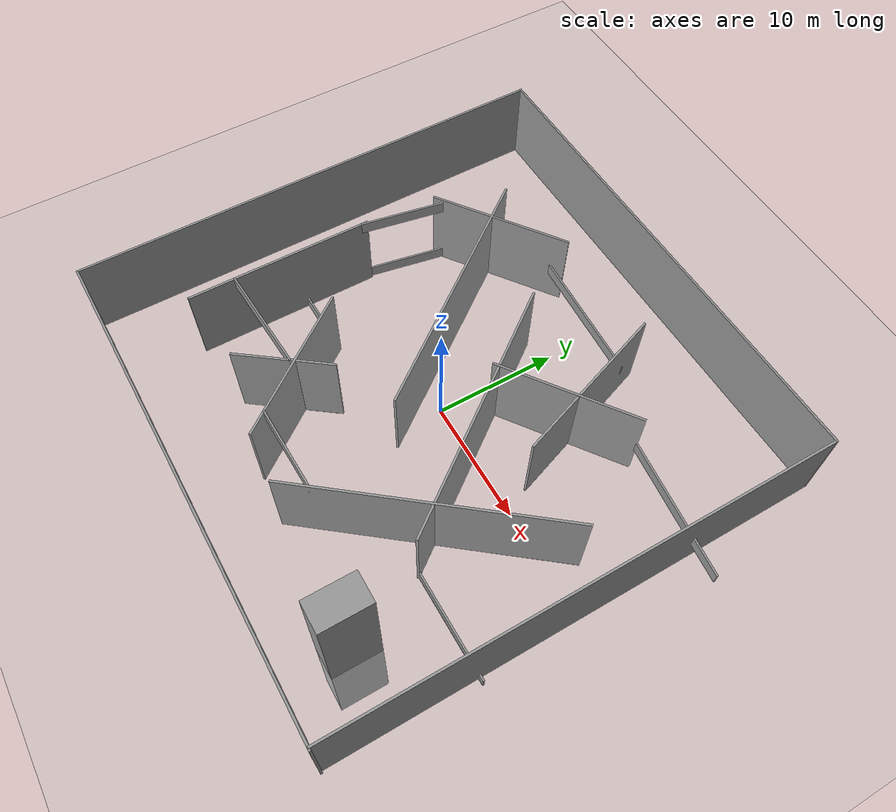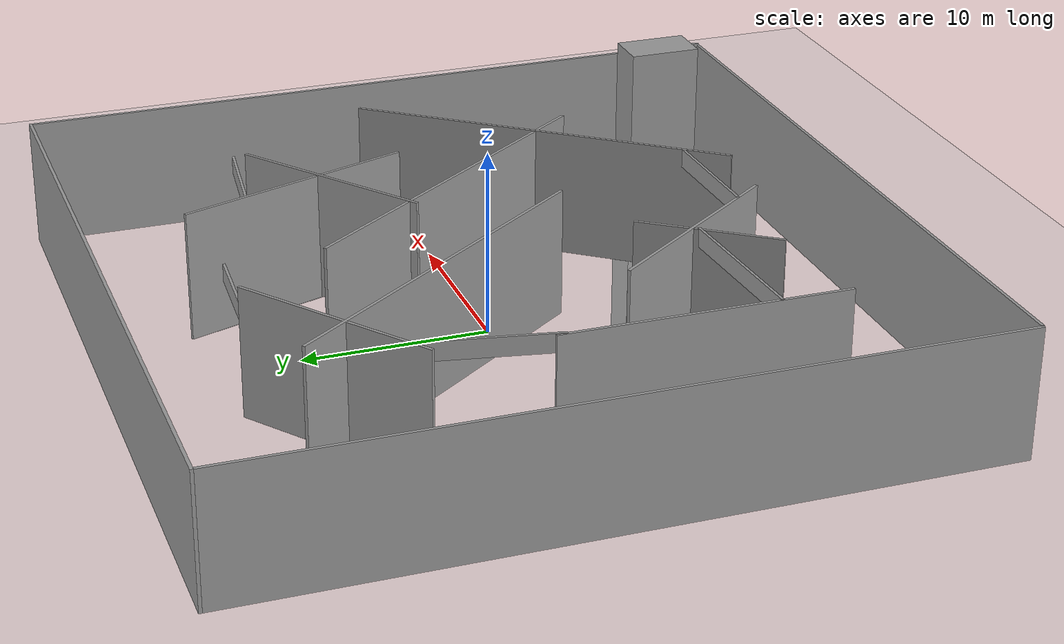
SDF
<sdf version="1.6">
 <world name="default">
  <light name="sun" type="directional">
   <pose>0 0 10 0 -0 0</pose>
   <diffuse>0.8 0.8 0.8 1</diffuse>
   <specular>0.1 0.1 0.1 1</specular>
   <attenuation>
    <range>1000</range>
    <constant>0.9</constant>
    <linear>0.01</linear>
    <quadratic>0.001</quadratic>
   </attenuation>
   <direction>-0.5 0.5 -1</direction>
  </light>
  <plugin name="gazebo_occupancy_map" filename="libgazebo_2Dmap_plugin.so">
   <map_resolution>0.5</map_resolution>
   <map_z>0.5</map_z>
   <map_size_x>50</map_size_x>
   <map_size_y>50</map_size_y>
   <init_robot_x>0</init_robot_x>
   <init_robot_y>0</init_robot_y>
  </plugin>
  <model name="ground_plane">
   <static>1</static>
   <link name="link">
    <collision name="collision">
     <geometry><plane><normal>0 0 1</normal><size>100 100</size></plane></geometry>
     <surface><friction><ode><mu>100</mu><mu2>50</mu2></ode></friction></surface>
    </collision>
    <visual name="visual">
     <cast_shadows>0</cast_shadows>
     <geometry><plane><normal>0 0 1</normal><size>100 100</size></plane></geometry>
     <material>
      <script><uri>file://media/materials/scripts/gazebo.material</uri><name>Gazebo/Grey</name></script>
     </material>
    </visual>
   </link>
  </model>
  <gravity>0 0 -9.8</gravity>
  <magnetic_field>6e-06 2.3e-05 -4.2e-05</magnetic_field>
  <atmosphere type="adiabatic"/>
  <physics name="default_physics" default="0" type="ode">
   <max_step_size>0.001</max_step_size>
   <real_time_factor>1</real_time_factor>
   <real_time_update_rate>1000</real_time_update_rate>
  </physics>
  <scene><ambient>0.4 0.4 0.4 1</ambient><background>0.7 0.7 0.7 1</background><shadows>1</shadows></scene>
  <spherical_coordinates>
   <surface_model>EARTH_WGS84</surface_model>
   <latitude_deg>0</latitude_deg>
   <longitude_deg>0</longitude_deg>
   <elevation>0</elevation>
   <heading_deg>0</heading_deg>
  </spherical_coordinates>
  <model name="lab">
   <link name="link">
    <pose>-7.10367 -10.0107 0.018867 0 -0 0</pose>
    <inertial>
     <mass>39.716</mass>
     <inertia><ixx>5223.85</ixx><ixy>0</ixy><ixz>0</ixz><iyy>6.61934</iyy><iyz>0</iyz><izz>5223.85</izz></inertia>
    </inertial>
    <visual name="visual">
     <geometry><box><size>0.170027 39.716 6.99793</size></box></geometry>
     <material>
      <script><name>Gazebo/Grey</name><uri>file://media/materials/scripts/gazebo.material</uri></script>
      <ambient>0.3 0.3 0.3 1</ambient>
      <diffuse>0.7 0.7 0.7 1</diffuse>
      <specular>0.01 0.01 0.01 1</specular>
      <emissive>0 0 0 1</emissive>
     </material>
    </visual>
    <collision name="collision">
     <geometry><box><size>0.170027 39.716 6.99793</size></box></geometry>
     <surface>
      <friction>
       <ode><mu>1</mu><mu2>1</mu2><fdir1>0 0 0</fdir1><slip1>0</slip1><slip2>0</slip2></ode>
       <torsional>
        <coefficient>1</coefficient>
        <patch_radius>0</patch_radius>
        <surface_radius>0</surface_radius>
        <use_patch_radius>1</use_patch_radius>
        <ode><slip>0</slip></ode>
       </torsional>
      </friction>
      <bounce><restitution_coefficient>0</restitution_coefficient><threshold>1e+06</threshold></bounce>
      <contact>
       <collide_without_contact>0</collide_without_contact>
       <collide_without_contact_bitmask>1</collide_without_contact_bitmask>
       <collide_bitmask>1</collide_bitmask>
       <ode>
        <soft_cfm>0</soft_cfm>
        <soft_erp>0.2</soft_erp>
        <kp>1e+13</kp>
        <kd>1</kd>
        <max_vel>0.01</max_vel>
        <min_depth>0</min_depth>
       </ode>
       <bullet>
        <split_impulse>1</split_impulse>
        <split_impulse_penetration_threshold>-0.01</split_impulse_penetration_threshold>
        <soft_cfm>0</soft_cfm>
        <soft_erp>0.2</soft_erp>
        <kp>1e+13</kp>
        <kd>1</kd>
       </bullet>
      </contact>
     </surface>
    </collision>
   </link>
   <link name="link_1">
    <pose>26.466 -24.6117 -3.06946 -2e-06 0.002655 -0.000605</pose>
    <inertial>
     <mass>166.387</mass>
     <inertia><ixx>4712.69</ixx><ixy>0</ixy><ixz>0</ixz><iyy>4580.01</iyy><iyz>0</iyz><izz>288.398</izz></inertia>
    </inertial>
    <visual name="visual">
     <geometry><box><size>2.36963 3.8967 18.0194</size></box></geometry>
     <material>
      <lighting>1</lighting>
      <script><uri>file://media/materials/scripts/gazebo.material</uri><name>Gazebo/Grey</name></script>
      <ambient>0.3 0.3 0.3 1</ambient>
      <diffuse>0.7 0.7 0.7 1</diffuse>
      <specular>0.01 0.01 0.01 1</specular>
      <emissive>0 0 0 1</emissive>
     </material>
    </visual>
    <collision name="collision">
     <geometry><box><size>2.36963 3.8967 18.0194</size></box></geometry>
     <surface>
      <friction>
       <ode><mu>1</mu><mu2>1</mu2><fdir1>0 0 0</fdir1><slip1>0</slip1><slip2>0</slip2></ode>
       <torsional>
        <coefficient>1</coefficient>
        <patch_radius>0</patch_radius>
        <surface_radius>0</surface_radius>
        <use_patch_radius>1</use_patch_radius>
        <ode><slip>0</slip></ode>
       </torsional>
      </friction>
      <bounce><restitution_coefficient>0</restitution_coefficient><threshold>1e+06</threshold></bounce>
      <contact>
       <collide_without_contact>0</collide_without_contact>
       <collide_without_contact_bitmask>1</collide_without_contact_bitmask>
       <collide_bitmask>1</collide_bitmask>
       <ode>
        <soft_cfm>0</soft_cfm>
        <soft_erp>0.2</soft_erp>
        <kp>1e+13</kp>
        <kd>1</kd>
        <max_vel>0.01</max_vel>
        <min_depth>0</min_depth>
       </ode>
       <bullet>
        <split_impulse>1</split_impulse>
        <split_impulse_penetration_threshold>-0.01</split_impulse_penetration_threshold>
        <soft_cfm>0</soft_cfm>
        <soft_erp>0.2</soft_erp>
        <kp>1e+13</kp>
        <kd>1</kd>
       </bullet>
      </contact>
     </surface>
    </collision>
   </link>
   <link name="link_clone">
    <pose>12.6468 9.86375 -0.014719 -0.002655 6e-06 -1.56835</pose>
    <inertial>
     <mass>39.716</mass>
     <inertia><ixx>5223.85</ixx><ixy>0</ixy><ixz>0</ixz><iyy>6.61934</iyy><iyz>0</iyz><izz>5223.85</izz></inertia>
    </inertial>
    <visual name="visual">
     <geometry><box><size>0.170027 39.716 6.99793</size></box></geometry>
     <material>
      <script><name>Gazebo/Grey</name><uri>file://media/materials/scripts/gazebo.material</uri></script>
      <ambient>0.3 0.3 0.3 1</ambient>
      <diffuse>0.7 0.7 0.7 1</diffuse>
      <specular>0.01 0.01 0.01 1</specular>
      <emissive>0 0 0 1</emissive>
      <shader type="pixel"/>
     </material>
    </visual>
    <collision name="collision">
     <geometry><box><size>0.170027 39.716 6.99793</size></box></geometry>
     <surface>
      <friction>
       <ode><mu>1</mu><mu2>1</mu2><fdir1>0 0 0</fdir1><slip1>0</slip1><slip2>0</slip2></ode>
       <torsional>
        <coefficient>1</coefficient>
        <patch_radius>0</patch_radius>
        <surface_radius>0</surface_radius>
        <use_patch_radius>1</use_patch_radius>
        <ode><slip>0</slip></ode>
       </torsional>
      </friction>
      <bounce><restitution_coefficient>0</restitution_coefficient><threshold>1e+06</threshold></bounce>
      <contact>
       <collide_without_contact>0</collide_without_contact>
       <collide_without_contact_bitmask>1</collide_without_contact_bitmask>
       <collide_bitmask>1</collide_bitmask>
       <ode>
        <soft_cfm>0</soft_cfm>
        <soft_erp>0.2</soft_erp>
        <kp>1e+13</kp>
        <kd>1</kd>
        <max_vel>0.01</max_vel>
        <min_depth>0</min_depth>
       </ode>
       <bullet>
        <split_impulse>1</split_impulse>
        <split_impulse_penetration_threshold>-0.01</split_impulse_penetration_threshold>
        <soft_cfm>0</soft_cfm>
        <soft_erp>0.2</soft_erp>
        <kp>1e+13</kp>
        <kd>1</kd>
       </bullet>
      </contact>
     </surface>
    </collision>
   </link>
   <link name="link_clone_0">
    <pose>32.4054 -9.88106 -0.067179 -2e-06 0.002655 -0.000605</pose>
    <inertial>
     <mass>39.716</mass>
     <inertia><ixx>5223.85</ixx><ixy>0</ixy><ixz>0</ixz><iyy>6.61934</iyy><iyz>0</iyz><izz>5223.85</izz></inertia>
    </inertial>
    <visual name="visual">
     <geometry><box><size>0.170027 39.716 6.99793</size></box></geometry>
     <material>
      <script><name>Gazebo/Grey</name><uri>file://media/materials/scripts/gazebo.material</uri></script>
      <ambient>0.3 0.3 0.3 1</ambient>
      <diffuse>0.7 0.7 0.7 1</diffuse>
      <specular>0.01 0.01 0.01 1</specular>
      <emissive>0 0 0 1</emissive>
      <shader type="pixel"/>
     </material>
    </visual>
    <collision name="collision">
     <geometry><box><size>0.170027 39.716 6.99793</size></box></geometry>
     <surface>
      <friction>
       <ode><mu>1</mu><mu2>1</mu2><fdir1>0 0 0</fdir1><slip1>0</slip1><slip2>0</slip2></ode>
       <torsional>
        <coefficient>1</coefficient>
        <patch_radius>0</patch_radius>
        <surface_radius>0</surface_radius>
        <use_patch_radius>1</use_patch_radius>
        <ode><slip>0</slip></ode>
       </torsional>
      </friction>
      <bounce><restitution_coefficient>0</restitution_coefficient><threshold>1e+06</threshold></bounce>
      <contact>
       <collide_without_contact>0</collide_without_contact>
       <collide_without_contact_bitmask>1</collide_without_contact_bitmask>
       <collide_bitmask>1</collide_bitmask>
       <ode>
        <soft_cfm>0</soft_cfm>
        <soft_erp>0.2</soft_erp>
        <kp>1e+13</kp>
        <kd>1</kd>
        <max_vel>0.01</max_vel>
        <min_depth>0</min_depth>
       </ode>
       <bullet>
        <split_impulse>1</split_impulse>
        <split_impulse_penetration_threshold>-0.01</split_impulse_penetration_threshold>
        <soft_cfm>0</soft_cfm>
        <soft_erp>0.2</soft_erp>
        <kp>1e+13</kp>
        <kd>1</kd>
       </bullet>
      </contact>
     </surface>
    </collision>
   </link>
   <link name="link_clone_clone">
    <pose>12.7693 -29.7513 -0.048615 -0.00531 1e-05 -1.56896</pose>
    <inertial>
     <mass>39.716</mass>
     <inertia><ixx>5223.85</ixx><ixy>0</ixy><ixz>0</ixz><iyy>6.61934</iyy><iyz>0</iyz><izz>5223.85</izz></inertia>
    </inertial>
    <visual name="visual">
     <geometry><box><size>0.170027 39.716 6.99793</size></box></geometry>
     <material>
      <script><name>Gazebo/Grey</name><uri>file://media/materials/scripts/gazebo.material</uri></script>
      <ambient>0.3 0.3 0.3 1</ambient>
      <diffuse>0.7 0.7 0.7 1</diffuse>
      <specular>0.01 0.01 0.01 1</specular>
      <emissive>0 0 0 1</emissive>
      <shader type="pixel"/>
     </material>
    </visual>
    <collision name="collision">
     <geometry><box><size>0.170027 39.716 6.99793</size></box></geometry>
     <surface>
      <friction>
       <ode><mu>1</mu><mu2>1</mu2><fdir1>0 0 0</fdir1><slip1>0</slip1><slip2>0</slip2></ode>
       <torsional>
        <coefficient>1</coefficient>
        <patch_radius>0</patch_radius>
        <surface_radius>0</surface_radius>
        <use_patch_radius>1</use_patch_radius>
        <ode><slip>0</slip></ode>
       </torsional>
      </friction>
      <bounce><restitution_coefficient>0</restitution_coefficient><threshold>1e+06</threshold></bounce>
      <contact>
       <collide_without_contact>0</collide_without_contact>
       <collide_without_contact_bitmask>1</collide_without_contact_bitmask>
       <collide_bitmask>1</collide_bitmask>
       <ode>
        <soft_cfm>0</soft_cfm>
        <soft_erp>0.2</soft_erp>
        <kp>1e+13</kp>
        <kd>1</kd>
        <max_vel>0.01</max_vel>
        <min_depth>0</min_depth>
       </ode>
       <bullet>
        <split_impulse>1</split_impulse>
        <split_impulse_penetration_threshold>-0.01</split_impulse_penetration_threshold>
        <soft_cfm>0</soft_cfm>
        <soft_erp>0.2</soft_erp>
        <kp>1e+13</kp>
        <kd>1</kd>
       </bullet>
      </contact>
     </surface>
    </collision>
   </link>
   <link name="link_clone_clone_0">
    <pose>4.37165 0.589647 -0.026328 -0.004295 0.003123 -0.942256</pose>
    <inertial>
     <mass>11.3941</mass>
     <inertia><ixx>124.221</ixx><ixy>0</ixy><ixz>0</ixz><iyy>1.89902</iyy><iyz>0</iyz><izz>124.221</izz></inertia>
    </inertial>
    <visual name="visual">
     <geometry><box><size>0.170027 11.3941 6.99793</size></box></geometry>
     <material>
      <script><name>Gazebo/Grey</name><uri>file://media/materials/scripts/gazebo.material</uri></script>
      <ambient>0.3 0.3 0.3 1</ambient>
      <diffuse>0.7 0.7 0.7 1</diffuse>
      <specular>0.01 0.01 0.01 1</specular>
      <emissive>0 0 0 1</emissive>
      <shader type="pixel"/>
     </material>
    </visual>
    <collision name="collision">
     <geometry><box><size>0.170027 11.3941 6.99793</size></box></geometry>
     <surface>
      <friction>
       <ode><mu>1</mu><mu2>1</mu2><fdir1>0 0 0</fdir1><slip1>0</slip1><slip2>0</slip2></ode>
       <torsional>
        <coefficient>1</coefficient>
        <patch_radius>0</patch_radius>
        <surface_radius>0</surface_radius>
        <use_patch_radius>1</use_patch_radius>
        <ode><slip>0</slip></ode>
       </torsional>
      </friction>
      <bounce><restitution_coefficient>0</restitution_coefficient><threshold>1e+06</threshold></bounce>
      <contact>
       <collide_without_contact>0</collide_without_contact>
       <collide_without_contact_bitmask>1</collide_without_contact_bitmask>
       <collide_bitmask>1</collide_bitmask>
       <ode>
        <soft_cfm>0</soft_cfm>
        <soft_erp>0.2</soft_erp>
        <kp>1e+13</kp>
        <kd>1</kd>
        <max_vel>0.01</max_vel>
        <min_depth>0</min_depth>
       </ode>
       <bullet>
        <split_impulse>1</split_impulse>
        <split_impulse_penetration_threshold>-0.01</split_impulse_penetration_threshold>
        <soft_cfm>0</soft_cfm>
        <soft_erp>0.2</soft_erp>
        <kp>1e+13</kp>
        <kd>1</kd>
       </bullet>
      </contact>
     </surface>
    </collision>
   </link>
   <link name="link_clone_clone_0_clone">
    <pose>8.31127 -5.90905 -0.049408 -0.004763 -0.006385 -2.50115</pose>
    <inertial>
     <mass>21.3538</mass>
     <inertia><ixx>813.204</ixx><ixy>0</ixy><ixz>0</ixz><iyy>3.55897</iyy><iyz>0</iyz><izz>813.204</izz></inertia>
    </inertial>
    <visual name="visual">
     <geometry><box><size>0.170027 21.3538 6.99793</size></box></geometry>
     <material>
      <script><name>Gazebo/Grey</name><uri>file://media/materials/scripts/gazebo.material</uri></script>
      <ambient>0.3 0.3 0.3 1</ambient>
      <diffuse>0.7 0.7 0.7 1</diffuse>
      <specular>0.01 0.01 0.01 1</specular>
      <emissive>0 0 0 1</emissive>
      <shader type="pixel"/>
     </material>
    </visual>
    <collision name="collision">
     <geometry><box><size>0.170027 21.3538 6.99793</size></box></geometry>
     <surface>
      <friction>
       <ode><mu>1</mu><mu2>1</mu2><fdir1>0 0 0</fdir1><slip1>0</slip1><slip2>0</slip2></ode>
       <torsional>
        <coefficient>1</coefficient>
        <patch_radius>0</patch_radius>
        <surface_radius>0</surface_radius>
        <use_patch_radius>1</use_patch_radius>
        <ode><slip>0</slip></ode>
       </torsional>
      </friction>
      <bounce><restitution_coefficient>0</restitution_coefficient><threshold>1e+06</threshold></bounce>
      <contact>
       <collide_without_contact>0</collide_without_contact>
       <collide_without_contact_bitmask>1</collide_without_contact_bitmask>
       <collide_bitmask>1</collide_bitmask>
       <ode>
        <soft_cfm>0</soft_cfm>
        <soft_erp>0.2</soft_erp>
        <kp>1e+13</kp>
        <kd>1</kd>
        <max_vel>0.01</max_vel>
        <min_depth>0</min_depth>
       </ode>
       <bullet>
        <split_impulse>1</split_impulse>
        <split_impulse_penetration_threshold>-0.01</split_impulse_penetration_threshold>
        <soft_cfm>0</soft_cfm>
        <soft_erp>0.2</soft_erp>
        <kp>1e+13</kp>
        <kd>1</kd>
       </bullet>
      </contact>
     </surface>
    </collision>
   </link>
   <link name="link_clone_clone_0_clone_0">
    <pose>20.0691 -3.60778 -0.079618 -0.006444 0.004683 -0.942869</pose>
    <inertial>
     <mass>11.3941</mass>
     <inertia><ixx>124.221</ixx><ixy>0</ixy><ixz>0</ixz><iyy>1.89902</iyy><iyz>0</iyz><izz>124.221</izz></inertia>
    </inertial>
    <visual name="visual">
     <geometry><box><size>0.170027 11.3941 6.99793</size></box></geometry>
     <material>
      <script><name>Gazebo/Grey</name><uri>file://media/materials/scripts/gazebo.material</uri></script>
      <ambient>0.3 0.3 0.3 1</ambient>
      <diffuse>0.7 0.7 0.7 1</diffuse>
      <specular>0.01 0.01 0.01 1</specular>
      <emissive>0 0 0 1</emissive>
      <shader type="pixel"/>
     </material>
    </visual>
    <collision name="collision">
     <geometry><box><size>0.170027 11.3941 6.99793</size></box></geometry>
     <surface>
      <friction>
       <ode><mu>1</mu><mu2>1</mu2><fdir1>0 0 0</fdir1><slip1>0</slip1><slip2>0</slip2></ode>
       <torsional>
        <coefficient>1</coefficient>
        <patch_radius>0</patch_radius>
        <surface_radius>0</surface_radius>
        <use_patch_radius>1</use_patch_radius>
        <ode><slip>0</slip></ode>
       </torsional>
      </friction>
      <bounce><restitution_coefficient>0</restitution_coefficient><threshold>1e+06</threshold></bounce>
      <contact>
       <collide_without_contact>0</collide_without_contact>
       <collide_without_contact_bitmask>1</collide_without_contact_bitmask>
       <collide_bitmask>1</collide_bitmask>
       <ode>
        <soft_cfm>0</soft_cfm>
        <soft_erp>0.2</soft_erp>
        <kp>1e+13</kp>
        <kd>1</kd>
        <max_vel>0.01</max_vel>
        <min_depth>0</min_depth>
       </ode>
       <bullet>
        <split_impulse>1</split_impulse>
        <split_impulse_penetration_threshold>-0.01</split_impulse_penetration_threshold>
        <soft_cfm>0</soft_cfm>
        <soft_erp>0.2</soft_erp>
        <kp>1e+13</kp>
        <kd>1</kd>
       </bullet>
      </contact>
     </surface>
    </collision>
   </link>
   <link name="link_clone_clone_0_clone_clone">
    <pose>-0.63369 -16.023 -0.047719 1.4e-05 -0.010621 3.1395</pose>
    <inertial>
     <mass>15.0057</mass>
     <inertia><ixx>282.825</ixx><ixy>0</ixy><ixz>0</ixz><iyy>2.50096</iyy><iyz>0</iyz><izz>282.825</izz></inertia>
    </inertial>
    <visual name="visual">
     <geometry><box><size>0.170027 15.0057 6.99793</size></box></geometry>
     <material>
      <script><name>Gazebo/Grey</name><uri>file://media/materials/scripts/gazebo.material</uri></script>
      <ambient>0.3 0.3 0.3 1</ambient>
      <diffuse>0.7 0.7 0.7 1</diffuse>
      <specular>0.01 0.01 0.01 1</specular>
      <emissive>0 0 0 1</emissive>
      <shader type="pixel"/>
     </material>
    </visual>
    <collision name="collision">
     <geometry><box><size>0.170027 15.0057 6.99793</size></box></geometry>
     <surface>
      <friction>
       <ode><mu>1</mu><mu2>1</mu2><fdir1>0 0 0</fdir1><slip1>0</slip1><slip2>0</slip2></ode>
       <torsional>
        <coefficient>1</coefficient>
        <patch_radius>0</patch_radius>
        <surface_radius>0</surface_radius>
        <use_patch_radius>1</use_patch_radius>
        <ode><slip>0</slip></ode>
       </torsional>
      </friction>
      <bounce><restitution_coefficient>0</restitution_coefficient><threshold>1e+06</threshold></bounce>
      <contact>
       <collide_without_contact>0</collide_without_contact>
       <collide_without_contact_bitmask>1</collide_without_contact_bitmask>
       <collide_bitmask>1</collide_bitmask>
       <ode>
        <soft_cfm>0</soft_cfm>
        <soft_erp>0.2</soft_erp>
        <kp>1e+13</kp>
        <kd>1</kd>
        <max_vel>0.01</max_vel>
        <min_depth>0</min_depth>
       </ode>
       <bullet>
        <split_impulse>1</split_impulse>
        <split_impulse_penetration_threshold>-0.01</split_impulse_penetration_threshold>
        <soft_cfm>0</soft_cfm>
        <soft_erp>0.2</soft_erp>
        <kp>1e+13</kp>
        <kd>1</kd>
       </bullet>
      </contact>
     </surface>
    </collision>
   </link>
   <link name="link_clone_clone_0_clone_clone_0">
    <pose>8.33286 -19.2066 -0.071528 -0.006348 -0.008515 -2.50174</pose>
    <inertial>
     <mass>12.5834</mass>
     <inertia><ixx>167.092</ixx><ixy>0</ixy><ixz>0</ixz><iyy>2.09724</iyy><iyz>0</iyz><izz>167.092</izz></inertia>
    </inertial>
    <visual name="visual">
     <geometry><box><size>0.170027 12.5834 6.99793</size></box></geometry>
     <material>
      <script><name>Gazebo/Grey</name><uri>file://media/materials/scripts/gazebo.material</uri></script>
      <ambient>0.3 0.3 0.3 1</ambient>
      <diffuse>0.7 0.7 0.7 1</diffuse>
      <specular>0.01 0.01 0.01 1</specular>
      <emissive>0 0 0 1</emissive>
      <shader type="pixel"/>
     </material>
    </visual>
    <collision name="collision">
     <geometry><box><size>0.170027 12.5834 6.99793</size></box></geometry>
     <surface>
      <friction>
       <ode><mu>1</mu><mu2>1</mu2><fdir1>0 0 0</fdir1><slip1>0</slip1><slip2>0</slip2></ode>
       <torsional>
        <coefficient>1</coefficient>
        <patch_radius>0</patch_radius>
        <surface_radius>0</surface_radius>
        <use_patch_radius>1</use_patch_radius>
        <ode><slip>0</slip></ode>
       </torsional>
      </friction>
      <bounce><restitution_coefficient>0</restitution_coefficient><threshold>1e+06</threshold></bounce>
      <contact>
       <collide_without_contact>0</collide_without_contact>
       <collide_without_contact_bitmask>1</collide_without_contact_bitmask>
       <collide_bitmask>1</collide_bitmask>
       <ode>
        <soft_cfm>0</soft_cfm>
        <soft_erp>0.2</soft_erp>
        <kp>1e+13</kp>
        <kd>1</kd>
        <max_vel>0.01</max_vel>
        <min_depth>0</min_depth>
       </ode>
       <bullet>
        <split_impulse>1</split_impulse>
        <split_impulse_penetration_threshold>-0.01</split_impulse_penetration_threshold>
        <soft_cfm>0</soft_cfm>
        <soft_erp>0.2</soft_erp>
        <kp>1e+13</kp>
        <kd>1</kd>
       </bullet>
      </contact>
     </surface>
    </collision>
   </link>
   <link name="link_clone_clone_0_clone_clone_0_clone">
    <pose>7.67427 -19.6941 -0.091899 0.007911 -0.010662 2.50212</pose>
    <inertial>
     <mass>7.73627</mass>
     <inertia><ixx>39.2301</ixx><ixy>0</ixy><ixz>0</ixz><iyy>1.28938</iyy><iyz>0</iyz><izz>39.2301</izz></inertia>
    </inertial>
    <visual name="visual">
     <geometry><box><size>0.170027 7.73627 6.99793</size></box></geometry>
     <material>
      <script><name>Gazebo/Grey</name><uri>file://media/materials/scripts/gazebo.material</uri></script>
      <ambient>0.3 0.3 0.3 1</ambient>
      <diffuse>0.7 0.7 0.7 1</diffuse>
      <specular>0.01 0.01 0.01 1</specular>
      <emissive>0 0 0 1</emissive>
      <shader type="pixel"/>
     </material>
    </visual>
    <collision name="collision">
     <geometry><box><size>0.170027 7.73627 6.99793</size></box></geometry>
     <surface>
      <friction>
       <ode><mu>1</mu><mu2>1</mu2><fdir1>0 0 0</fdir1><slip1>0</slip1><slip2>0</slip2></ode>
       <torsional>
        <coefficient>1</coefficient>
        <patch_radius>0</patch_radius>
        <surface_radius>0</surface_radius>
        <use_patch_radius>1</use_patch_radius>
        <ode><slip>0</slip></ode>
       </torsional>
      </friction>
      <bounce><restitution_coefficient>0</restitution_coefficient><threshold>1e+06</threshold></bounce>
      <contact>
       <collide_without_contact>0</collide_without_contact>
       <collide_without_contact_bitmask>1</collide_without_contact_bitmask>
       <collide_bitmask>1</collide_bitmask>
       <ode>
        <soft_cfm>0</soft_cfm>
        <soft_erp>0.2</soft_erp>
        <kp>1e+13</kp>
        <kd>1</kd>
        <max_vel>0.01</max_vel>
        <min_depth>0</min_depth>
       </ode>
       <bullet>
        <split_impulse>1</split_impulse>
        <split_impulse_penetration_threshold>-0.01</split_impulse_penetration_threshold>
        <soft_cfm>0</soft_cfm>
        <soft_erp>0.2</soft_erp>
        <kp>1e+13</kp>
        <kd>1</kd>
       </bullet>
      </contact>
     </surface>
    </collision>
   </link>
   <link name="link_clone_clone_0_clone_clone_1">
    <pose>18.0654 -9.60656 -0.097375 -0.006348 -0.008515 -2.50174</pose>
    <inertial>
     <mass>21.3538</mass>
     <inertia><ixx>813.204</ixx><ixy>0</ixy><ixz>0</ixz><iyy>3.55897</iyy><iyz>0</iyz><izz>813.204</izz></inertia>
    </inertial>
    <visual name="visual">
     <geometry><box><size>0.170027 21.3538 6.99793</size></box></geometry>
     <material>
      <script><name>Gazebo/Grey</name><uri>file://media/materials/scripts/gazebo.material</uri></script>
      <ambient>0.3 0.3 0.3 1</ambient>
      <diffuse>0.7 0.7 0.7 1</diffuse>
      <specular>0.01 0.01 0.01 1</specular>
      <emissive>0 0 0 1</emissive>
      <shader type="pixel"/>
     </material>
    </visual>
    <collision name="collision">
     <geometry><box><size>0.170027 21.3538 6.99793</size></box></geometry>
     <surface>
      <friction>
       <ode><mu>1</mu><mu2>1</mu2><fdir1>0 0 0</fdir1><slip1>0</slip1><slip2>0</slip2></ode>
       <torsional>
        <coefficient>1</coefficient>
        <patch_radius>0</patch_radius>
        <surface_radius>0</surface_radius>
        <use_patch_radius>1</use_patch_radius>
        <ode><slip>0</slip></ode>
       </torsional>
      </friction>
      <bounce><restitution_coefficient>0</restitution_coefficient><threshold>1e+06</threshold></bounce>
      <contact>
       <collide_without_contact>0</collide_without_contact>
       <collide_without_contact_bitmask>1</collide_without_contact_bitmask>
       <collide_bitmask>1</collide_bitmask>
       <ode>
        <soft_cfm>0</soft_cfm>
        <soft_erp>0.2</soft_erp>
        <kp>1e+13</kp>
        <kd>1</kd>
        <max_vel>0.01</max_vel>
        <min_depth>0</min_depth>
       </ode>
       <bullet>
        <split_impulse>1</split_impulse>
        <split_impulse_penetration_threshold>-0.01</split_impulse_penetration_threshold>
        <soft_cfm>0</soft_cfm>
        <soft_erp>0.2</soft_erp>
        <kp>1e+13</kp>
        <kd>1</kd>
       </bullet>
      </contact>
     </surface>
    </collision>
   </link>
   <link name="link_clone_clone_0_clone_clone_1_clone">
    <pose>20.2366 -1.78029 -0.151111 -0.004433 -0.012514 -2.8022</pose>
    <inertial>
     <mass>13.3592</mass>
     <inertia><ixx>199.797</ixx><ixy>0</ixy><ixz>0</ixz><iyy>2.22653</iyy><iyz>0</iyz><izz>199.797</izz></inertia>
    </inertial>
    <visual name="visual">
     <geometry><box><size>0.170027 13.3592 6.99793</size></box></geometry>
     <material>
      <script><name>Gazebo/Grey</name><uri>file://media/materials/scripts/gazebo.material</uri></script>
      <ambient>0.3 0.3 0.3 1</ambient>
      <diffuse>0.7 0.7 0.7 1</diffuse>
      <specular>0.01 0.01 0.01 1</specular>
      <emissive>0 0 0 1</emissive>
      <shader type="pixel"/>
     </material>
    </visual>
    <collision name="collision">
     <geometry><box><size>0.170027 13.3592 6.99793</size></box></geometry>
     <surface>
      <friction>
       <ode><mu>1</mu><mu2>1</mu2><fdir1>0 0 0</fdir1><slip1>0</slip1><slip2>0</slip2></ode>
       <torsional>
        <coefficient>1</coefficient>
        <patch_radius>0</patch_radius>
        <surface_radius>0</surface_radius>
        <use_patch_radius>1</use_patch_radius>
        <ode><slip>0</slip></ode>
       </torsional>
      </friction>
      <bounce><restitution_coefficient>0</restitution_coefficient><threshold>1e+06</threshold></bounce>
      <contact>
       <collide_without_contact>0</collide_without_contact>
       <collide_without_contact_bitmask>1</collide_without_contact_bitmask>
       <collide_bitmask>1</collide_bitmask>
       <ode>
        <soft_cfm>0</soft_cfm>
        <soft_erp>0.2</soft_erp>
        <kp>1e+13</kp>
        <kd>1</kd>
        <max_vel>0.01</max_vel>
        <min_depth>0</min_depth>
       </ode>
       <bullet>
        <split_impulse>1</split_impulse>
        <split_impulse_penetration_threshold>-0.01</split_impulse_penetration_threshold>
        <soft_cfm>0</soft_cfm>
        <soft_erp>0.2</soft_erp>
        <kp>1e+13</kp>
        <kd>1</kd>
       </bullet>
      </contact>
     </surface>
    </collision>
   </link>
   <link name="link_clone_clone_0_clone_clone_2">
    <pose>22.5723 -16.2194 -0.10934 -0.006574 0.008342 -0.668218</pose>
    <inertial>
     <mass>21.3538</mass>
     <inertia><ixx>813.204</ixx><ixy>0</ixy><ixz>0</ixz><iyy>3.55897</iyy><iyz>0</iyz><izz>813.204</izz></inertia>
    </inertial>
    <visual name="visual">
     <geometry><box><size>0.170027 21.3538 6.99793</size></box></geometry>
     <material>
      <script><name>Gazebo/Grey</name><uri>file://media/materials/scripts/gazebo.material</uri></script>
      <ambient>0.3 0.3 0.3 1</ambient>
      <diffuse>0.7 0.7 0.7 1</diffuse>
      <specular>0.01 0.01 0.01 1</specular>
      <emissive>0 0 0 1</emissive>
      <shader type="pixel"/>
     </material>
    </visual>
    <collision name="collision">
     <geometry><box><size>0.170027 21.3538 6.99793</size></box></geometry>
     <surface>
      <friction>
       <ode><mu>1</mu><mu2>1</mu2><fdir1>0 0 0</fdir1><slip1>0</slip1><slip2>0</slip2></ode>
       <torsional>
        <coefficient>1</coefficient>
        <patch_radius>0</patch_radius>
        <surface_radius>0</surface_radius>
        <use_patch_radius>1</use_patch_radius>
        <ode><slip>0</slip></ode>
       </torsional>
      </friction>
      <bounce><restitution_coefficient>0</restitution_coefficient><threshold>1e+06</threshold></bounce>
      <contact>
       <collide_without_contact>0</collide_without_contact>
       <collide_without_contact_bitmask>1</collide_without_contact_bitmask>
       <collide_bitmask>1</collide_bitmask>
       <ode>
        <soft_cfm>0</soft_cfm>
        <soft_erp>0.2</soft_erp>
        <kp>1e+13</kp>
        <kd>1</kd>
        <max_vel>0.01</max_vel>
        <min_depth>0</min_depth>
       </ode>
       <bullet>
        <split_impulse>1</split_impulse>
        <split_impulse_penetration_threshold>-0.01</split_impulse_penetration_threshold>
        <soft_cfm>0</soft_cfm>
        <soft_erp>0.2</soft_erp>
        <kp>1e+13</kp>
        <kd>1</kd>
       </bullet>
      </contact>
     </surface>
    </collision>
   </link>
   <static>1</static>
   <pose>-13.6385 10.0871 3.49918 0 -0.002655 0.000605</pose>
  </model>
  <model name="unit_box_0">
   <pose>-11.6173 -4.25608 0.497942 1e-06 0.000828 0.016964</pose>
   <link name="link">
    <inertial>
     <mass>1</mass>
     <inertia>
      <ixx>0.166667</ixx>
      <ixy>0</ixy>
      <ixz>0</ixz>
      <iyy>0.166667</iyy>
      <iyz>0</iyz>
      <izz>0.166667</izz>
     </inertia>
    </inertial>
    <collision name="collision"><geometry><box><size>4.96912 0.147811 1</size></box></geometry></collision>
    <visual name="visual">
     <geometry><box><size>4.96912 0.147811 1</size></box></geometry>
     <material>
      <script><name>Gazebo/Grey</name><uri>file://media/materials/scripts/gazebo.material</uri></script>
     </material>
    </visual>
   </link>
  </model>
  <model name="semimuro_clone">
   <link name="link">
    <pose>0.216555 -0.39907 5.99147 0 -0 0</pose>
    <inertial>
     <mass>1.36462</mass>
     <inertia>
      <ixx>0.227437</ixx>
      <ixy>0</ixy>
      <ixz>0</ixz>
      <iyy>0.325483</iyy>
      <iyz>0</iyz>
      <izz>0.325483</izz>
     </inertia>
    </inertial>
    <visual name="visual">
     <geometry><box><size>6.78097 0.147811 1</size></box></geometry>
     <material>
      <script><name>Gazebo/Grey</name><uri>file://media/materials/scripts/gazebo.material</uri></script>
      <ambient>0.3 0.3 0.3 1</ambient>
      <diffuse>0.7 0.7 0.7 1</diffuse>
      <specular>0.01 0.01 0.01 1</specular>
      <emissive>0 0 0 1</emissive>
     </material>
    </visual>
    <collision name="collision">
     <geometry><box><size>6.78097 0.147811 1</size></box></geometry>
     <surface>
      <friction>
       <ode><mu>1</mu><mu2>1</mu2><fdir1>0 0 0</fdir1><slip1>0</slip1><slip2>0</slip2></ode>
       <torsional>
        <coefficient>1</coefficient>
        <patch_radius>0</patch_radius>
        <surface_radius>0</surface_radius>
        <use_patch_radius>1</use_patch_radius>
        <ode><slip>0</slip></ode>
       </torsional>
      </friction>
      <bounce><restitution_coefficient>0</restitution_coefficient><threshold>1e+06</threshold></bounce>
      <contact>
       <collide_without_contact>0</collide_without_contact>
       <collide_without_contact_bitmask>1</collide_without_contact_bitmask>
       <collide_bitmask>1</collide_bitmask>
       <ode>
        <soft_cfm>0</soft_cfm>
        <soft_erp>0.2</soft_erp>
        <kp>1e+13</kp>
        <kd>1</kd>
        <max_vel>0.01</max_vel>
        <min_depth>0</min_depth>
       </ode>
       <bullet>
        <split_impulse>1</split_impulse>
        <split_impulse_penetration_threshold>-0.01</split_impulse_penetration_threshold>
        <soft_cfm>0</soft_cfm>
        <soft_erp>0.2</soft_erp>
        <kp>1e+13</kp>
        <kd>1</kd>
       </bullet>
      </contact>
     </surface>
    </collision>
   </link>
   <static>1</static>
   <pose>0.450131 -12.0926 0.49794 2.1e-05 0.00083 0.025196</pose>
  </model>
  <model name="semimuro_clone_0">
   <link name="link">
    <pose>0.216555 -0.39907 5.99147 0 -0 0</pose>
    <inertial>
     <mass>1.36462</mass>
     <inertia>
      <ixx>0.227437</ixx>
      <ixy>0</ixy>
      <ixz>0</ixz>
      <iyy>0.325483</iyy>
      <iyz>0</iyz>
      <izz>0.325483</izz>
     </inertia>
    </inertial>
    <visual name="visual">
     <geometry><box><size>6.78097 0.147811 1</size></box></geometry>
     <material>
      <script><name>Gazebo/Grey</name><uri>file://media/materials/scripts/gazebo.material</uri></script>
      <ambient>0.3 0.3 0.3 1</ambient>
      <diffuse>0.7 0.7 0.7 1</diffuse>
      <specular>0.01 0.01 0.01 1</specular>
      <emissive>0 0 0 1</emissive>
     </material>
    </visual>
    <collision name="collision">
     <geometry><box><size>6.78097 0.147811 1</size></box></geometry>
     <surface>
      <friction>
       <ode><mu>1</mu><mu2>1</mu2><fdir1>0 0 0</fdir1><slip1>0</slip1><slip2>0</slip2></ode>
       <torsional>
        <coefficient>1</coefficient>
        <patch_radius>0</patch_radius>
        <surface_radius>0</surface_radius>
        <use_patch_radius>1</use_patch_radius>
        <ode><slip>0</slip></ode>
       </torsional>
      </friction>
      <bounce><restitution_coefficient>0</restitution_coefficient><threshold>1e+06</threshold></bounce>
      <contact>
       <collide_without_contact>0</collide_without_contact>
       <collide_without_contact_bitmask>1</collide_without_contact_bitmask>
       <collide_bitmask>1</collide_bitmask>
       <ode>
        <soft_cfm>0</soft_cfm>
        <soft_erp>0.2</soft_erp>
        <kp>1e+13</kp>
        <kd>1</kd>
        <max_vel>0.01</max_vel>
        <min_depth>0</min_depth>
       </ode>
       <bullet>
        <split_impulse>1</split_impulse>
        <split_impulse_penetration_threshold>-0.01</split_impulse_penetration_threshold>
        <soft_cfm>0</soft_cfm>
        <soft_erp>0.2</soft_erp>
        <kp>1e+13</kp>
        <kd>1</kd>
       </bullet>
      </contact>
     </surface>
    </collision>
   </link>
   <static>1</static>
   <pose>-14.0103 4.19773 0.497941 0.000816 0.000152 1.38611</pose>
  </model>
  <model name="semimuro_clone_0_clone">
   <link name="link">
    <pose>0.216555 -0.39907 5.99147 0 -0 0</pose>
    <inertial>
     <mass>1.36462</mass>
     <inertia>
      <ixx>0.227437</ixx>
      <ixy>0</ixy>
      <ixz>0</ixz>
      <iyy>0.325483</iyy>
      <iyz>0</iyz>
      <izz>0.325483</izz>
     </inertia>
    </inertial>
    <visual name="visual">
     <geometry><box><size>6.78097 0.147811 1</size></box></geometry>
     <material>
      <script><name>Gazebo/Grey</name><uri>file://media/materials/scripts/gazebo.material</uri></script>
      <ambient>0.3 0.3 0.3 1</ambient>
      <diffuse>0.7 0.7 0.7 1</diffuse>
      <specular>0.01 0.01 0.01 1</specular>
      <emissive>0 0 0 1</emissive>
     </material>
    </visual>
    <collision name="collision">
     <geometry><box><size>6.78097 0.147811 1</size></box></geometry>
     <surface>
      <friction>
       <ode><mu>1</mu><mu2>1</mu2><fdir1>0 0 0</fdir1><slip1>0</slip1><slip2>0</slip2></ode>
       <torsional>
        <coefficient>1</coefficient>
        <patch_radius>0</patch_radius>
        <surface_radius>0</surface_radius>
        <use_patch_radius>1</use_patch_radius>
        <ode><slip>0</slip></ode>
       </torsional>
      </friction>
      <bounce><restitution_coefficient>0</restitution_coefficient><threshold>1e+06</threshold></bounce>
      <contact>
       <collide_without_contact>0</collide_without_contact>
       <collide_without_contact_bitmask>1</collide_without_contact_bitmask>
       <collide_bitmask>1</collide_bitmask>
       <ode>
        <soft_cfm>0</soft_cfm>
        <soft_erp>0.2</soft_erp>
        <kp>1e+13</kp>
        <kd>1</kd>
        <max_vel>0.01</max_vel>
        <min_depth>0</min_depth>
       </ode>
       <bullet>
        <split_impulse>1</split_impulse>
        <split_impulse_penetration_threshold>-0.01</split_impulse_penetration_threshold>
        <soft_cfm>0</soft_cfm>
        <soft_erp>0.2</soft_erp>
        <kp>1e+13</kp>
        <kd>1</kd>
       </bullet>
      </contact>
     </surface>
    </collision>
   </link>
   <static>1</static>
   <pose>-14.2765 4.41908 -5.45782 0.000816 0.000152 1.38611</pose>
  </model>
  <model name="semimuro_clone_0_clone_0_0">
   <link name="link">
    <pose>1.19716 -0.401073 5.99149 0 -0 0</pose>
    <inertial>
     <mass>1.76034</mass>
     <inertia>
      <ixx>0.293391</ixx>
      <ixy>0</ixy>
      <ixz>0</ixz>
      <iyy>0.601273</iyy>
      <iyz>0</iyz>
      <izz>0.601273</izz>
     </inertia>
    </inertial>
    <visual name="visual">
     <geometry><box><size>8.74736 0.147811 1</size></box></geometry>
     <material>
      <script><name>Gazebo/Grey</name><uri>file://media/materials/scripts/gazebo.material</uri></script>
      <ambient>0.3 0.3 0.3 1</ambient>
      <diffuse>0.7 0.7 0.7 1</diffuse>
      <specular>0.01 0.01 0.01 1</specular>
      <emissive>0 0 0 1</emissive>
     </material>
    </visual>
    <collision name="collision">
     <geometry><box><size>8.74736 0.147811 1</size></box></geometry>
     <surface>
      <friction>
       <ode><mu>1</mu><mu2>1</mu2><fdir1>0 0 0</fdir1><slip1>0</slip1><slip2>0</slip2></ode>
       <torsional>
        <coefficient>1</coefficient>
        <patch_radius>0</patch_radius>
        <surface_radius>0</surface_radius>
        <use_patch_radius>1</use_patch_radius>
        <ode><slip>0</slip></ode>
       </torsional>
      </friction>
      <bounce><restitution_coefficient>0</restitution_coefficient><threshold>1e+06</threshold></bounce>
      <contact>
       <collide_without_contact>0</collide_without_contact>
       <collide_without_contact_bitmask>1</collide_without_contact_bitmask>
       <collide_bitmask>1</collide_bitmask>
       <ode>
        <soft_cfm>0</soft_cfm>
        <soft_erp>0.2</soft_erp>
        <kp>1e+13</kp>
        <kd>1</kd>
        <max_vel>0.01</max_vel>
        <min_depth>0</min_depth>
       </ode>
       <bullet>
        <split_impulse>1</split_impulse>
        <split_impulse_penetration_threshold>-0.01</split_impulse_penetration_threshold>
        <soft_cfm>0</soft_cfm>
        <soft_erp>0.2</soft_erp>
        <kp>1e+13</kp>
        <kd>1</kd>
       </bullet>
      </contact>
     </surface>
    </collision>
   </link>
   <link name="link_clone">
    <pose>26.1269 -0.261163 -0.199792 0 -0.00083 -0.055287</pose>
    <inertial>
     <mass>1.76034</mass>
     <inertia>
      <ixx>0.293391</ixx>
      <ixy>0</ixy>
      <ixz>0</ixz>
      <iyy>0.601273</iyy>
      <iyz>0</iyz>
      <izz>0.601273</izz>
     </inertia>
    </inertial>
    <visual name="visual">
     <geometry><box><size>8.74736 0.147811 1</size></box></geometry>
     <material>
      <script><name>Gazebo/Grey</name><uri>file://media/materials/scripts/gazebo.material</uri></script>
      <ambient>0.3 0.3 0.3 1</ambient>
      <diffuse>0.7 0.7 0.7 1</diffuse>
      <specular>0.01 0.01 0.01 1</specular>
      <emissive>0 0 0 1</emissive>
      <shader type="pixel"/>
     </material>
    </visual>
    <collision name="collision">
     <geometry><box><size>8.74736 0.147811 1</size></box></geometry>
     <surface>
      <friction>
       <ode><mu>1</mu><mu2>1</mu2><fdir1>0 0 0</fdir1><slip1>0</slip1><slip2>0</slip2></ode>
       <torsional>
        <coefficient>1</coefficient>
        <patch_radius>0</patch_radius>
        <surface_radius>0</surface_radius>
        <use_patch_radius>1</use_patch_radius>
        <ode><slip>0</slip></ode>
       </torsional>
      </friction>
      <bounce><restitution_coefficient>0</restitution_coefficient><threshold>1e+06</threshold></bounce>
      <contact>
       <collide_without_contact>0</collide_without_contact>
       <collide_without_contact_bitmask>1</collide_without_contact_bitmask>
       <collide_bitmask>1</collide_bitmask>
       <ode>
        <soft_cfm>0</soft_cfm>
        <soft_erp>0.2</soft_erp>
        <kp>1e+13</kp>
        <kd>1</kd>
        <max_vel>0.01</max_vel>
        <min_depth>0</min_depth>
       </ode>
       <bullet>
        <split_impulse>1</split_impulse>
        <split_impulse_penetration_threshold>-0.01</split_impulse_penetration_threshold>
        <soft_cfm>0</soft_cfm>
        <soft_erp>0.2</soft_erp>
        <kp>1e+13</kp>
        <kd>1</kd>
       </bullet>
      </contact>
     </surface>
    </collision>
   </link>
   <link name="link_clone_clone">
    <pose>12.101 21.4311 2.62704 -5.6e-05 0.001658 3.02438</pose>
    <inertial>
     <mass>2.19473</mass>
     <inertia><ixx>0.365789</ixx><ixy>0</ixy><ixz>0</ixz><iyy>1.06386</iyy><iyz>0</iyz><izz>1.06386</izz></inertia>
    </inertial>
    <visual name="visual">
     <geometry><box><size>10.9059 0.147811 1</size></box></geometry>
     <material>
      <script><name>Gazebo/Grey</name><uri>file://media/materials/scripts/gazebo.material</uri></script>
      <ambient>0.3 0.3 0.3 1</ambient>
      <diffuse>0.7 0.7 0.7 1</diffuse>
      <specular>0.01 0.01 0.01 1</specular>
      <emissive>0 0 0 1</emissive>
      <shader type="pixel"/>
     </material>
    </visual>
    <collision name="collision">
     <geometry><box><size>10.9059 0.147811 1</size></box></geometry>
     <surface>
      <friction>
       <ode><mu>1</mu><mu2>1</mu2><fdir1>0 0 0</fdir1><slip1>0</slip1><slip2>0</slip2></ode>
       <torsional>
        <coefficient>1</coefficient>
        <patch_radius>0</patch_radius>
        <surface_radius>0</surface_radius>
        <use_patch_radius>1</use_patch_radius>
        <ode><slip>0</slip></ode>
       </torsional>
      </friction>
      <bounce><restitution_coefficient>0</restitution_coefficient><threshold>1e+06</threshold></bounce>
      <contact>
       <collide_without_contact>0</collide_without_contact>
       <collide_without_contact_bitmask>1</collide_without_contact_bitmask>
       <collide_bitmask>1</collide_bitmask>
       <ode>
        <soft_cfm>0</soft_cfm>
        <soft_erp>0.2</soft_erp>
        <kp>1e+13</kp>
        <kd>1</kd>
        <max_vel>0.01</max_vel>
        <min_depth>0</min_depth>
       </ode>
       <bullet>
        <split_impulse>1</split_impulse>
        <split_impulse_penetration_threshold>-0.01</split_impulse_penetration_threshold>
        <soft_cfm>0</soft_cfm>
        <soft_erp>0.2</soft_erp>
        <kp>1e+13</kp>
        <kd>1</kd>
       </bullet>
      </contact>
     </surface>
    </collision>
   </link>
   <link name="link_clone_clone_clone">
    <pose>28.446 16.6994 2.64984 -0.000153 0.002482 2.96909</pose>
    <inertial>
     <mass>2.19473</mass>
     <inertia><ixx>0.365789</ixx><ixy>0</ixy><ixz>0</ixz><iyy>1.06386</iyy><iyz>0</iyz><izz>1.06386</izz></inertia>
    </inertial>
    <visual name="visual">
     <geometry><box><size>10.9059 0.147811 1</size></box></geometry>
     <material>
      <script><name>Gazebo/Grey</name><uri>file://media/materials/scripts/gazebo.material</uri></script>
      <ambient>0.3 0.3 0.3 1</ambient>
      <diffuse>0.7 0.7 0.7 1</diffuse>
      <specular>0.01 0.01 0.01 1</specular>
      <emissive>0 0 0 1</emissive>
      <shader type="pixel"/>
     </material>
    </visual>
    <collision name="collision">
     <geometry><box><size>10.9059 0.147811 1</size></box></geometry>
     <surface>
      <friction>
       <ode><mu>1</mu><mu2>1</mu2><fdir1>0 0 0</fdir1><slip1>0</slip1><slip2>0</slip2></ode>
       <torsional>
        <coefficient>1</coefficient>
        <patch_radius>0</patch_radius>
        <surface_radius>0</surface_radius>
        <use_patch_radius>1</use_patch_radius>
        <ode><slip>0</slip></ode>
       </torsional>
      </friction>
      <bounce><restitution_coefficient>0</restitution_coefficient><threshold>1e+06</threshold></bounce>
      <contact>
       <collide_without_contact>0</collide_without_contact>
       <collide_without_contact_bitmask>1</collide_without_contact_bitmask>
       <collide_bitmask>1</collide_bitmask>
       <ode>
        <soft_cfm>0</soft_cfm>
        <soft_erp>0.2</soft_erp>
        <kp>1e+13</kp>
        <kd>1</kd>
        <max_vel>0.01</max_vel>
        <min_depth>0</min_depth>
       </ode>
       <bullet>
        <split_impulse>1</split_impulse>
        <split_impulse_penetration_threshold>-0.01</split_impulse_penetration_threshold>
        <soft_cfm>0</soft_cfm>
        <soft_erp>0.2</soft_erp>
        <kp>1e+13</kp>
        <kd>1</kd>
       </bullet>
      </contact>
     </surface>
    </collision>
   </link>
   <static>1</static>
   <pose>-11.1522 -9.11148 0.497943 4.6e-05 0.000829 0.055287</pose>
  </model>
 </world>
</sdf>
